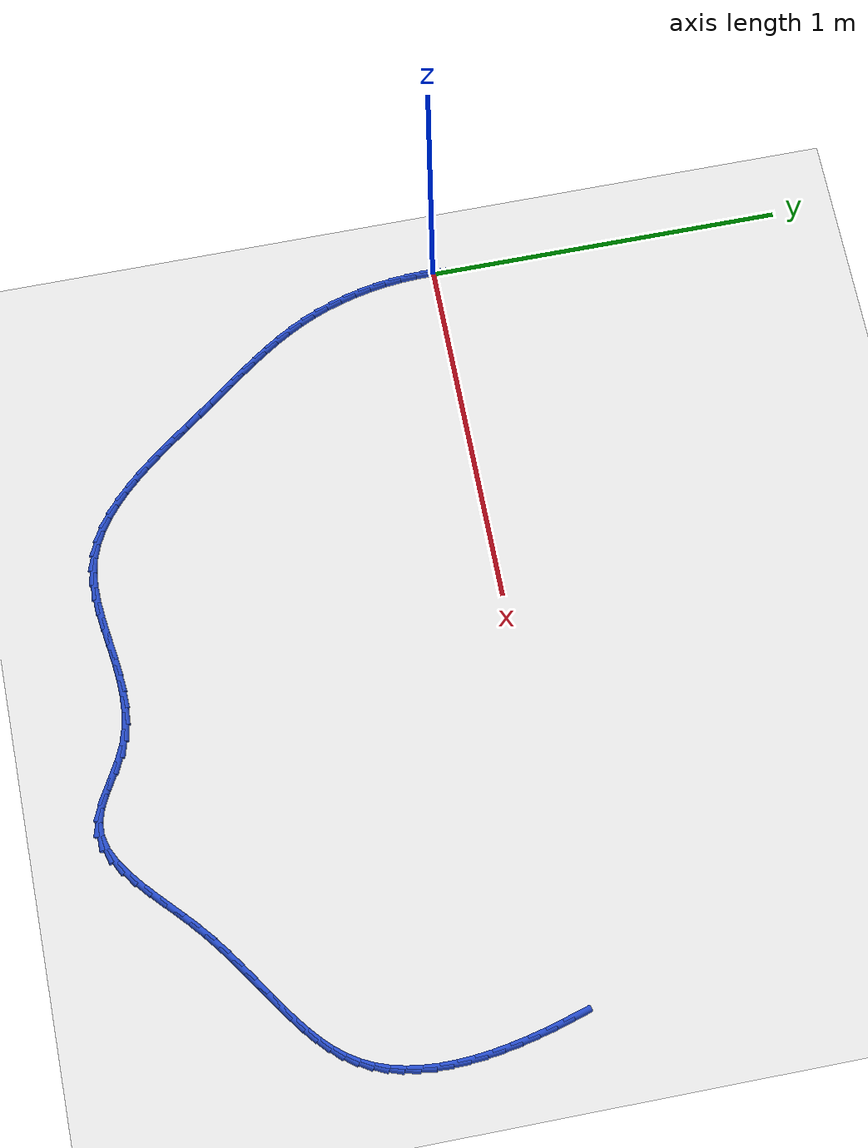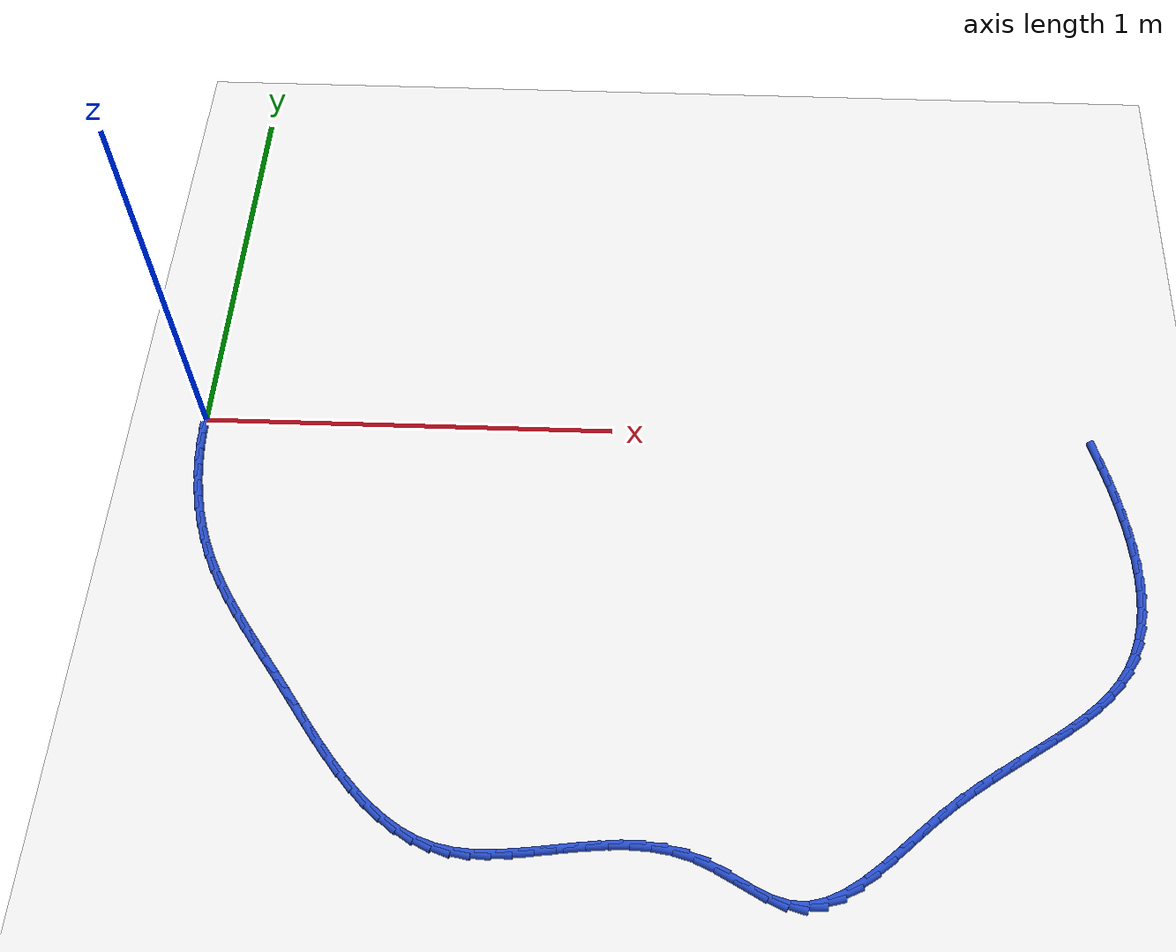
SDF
<sdf version="1.6">
 <world name="default">
  <model name="ground_plane">
   <static>1</static>
   <link name="link">
    <collision name="collision">
     <geometry><plane><normal>0 0 1</normal><size>100 100</size></plane></geometry>
     <surface><friction><ode><mu>100</mu><mu2>50</mu2></ode></friction></surface>
    </collision>
    <visual name="visual">
     <cast_shadows>0</cast_shadows>
     <geometry><plane><normal>0 0 1</normal><size>100 100</size></plane></geometry>
     <material>
      <script><uri>file://media/materials/scripts/gazebo.material</uri><name>Gazebo/WhiteGlow</name></script>
     </material>
    </visual>
   </link>
  </model>
  <model name="line">
   <link name="link_0">
    <pose>-3.469446951953614e-18 -4.163336342344337e-17 0.01 0 1.57 1.5196897494440293</pose>
    <collision name="collision">
     <geometry><cylinder><radius>0.01</radius><length>0.08</length></cylinder></geometry>
    </collision>
    <visual name="visual">
     <material>
      <script><name>Gazebo/Blue</name><uri>file://media/materials/scripts/gazebo.material</uri></script>
     </material>
     <geometry><cylinder><radius>0.01</radius><length>0.08</length></cylinder></geometry>
    </visual>
   </link>
   <link name="link_80">
    <pose>2.178298063990944 -0.037869752215366315 0.01 0 1.57 -1.284483496334908</pose>
    <collision name="collision">
     <geometry><cylinder><radius>0.01</radius><length>0.08</length></cylinder></geometry>
    </collision>
    <visual name="visual">
     <material>
      <script><name>Gazebo/Blue</name><uri>file://media/materials/scripts/gazebo.material</uri></script>
     </material>
     <geometry><cylinder><radius>0.01</radius><length>0.08</length></cylinder></geometry>
    </visual>
   </link>
   <link name="link_81">
    <pose>2.1927208156520206 -0.08685979939778331 0.01 0 1.57 -1.3126199745238356</pose>
    <collision name="collision">
     <geometry><cylinder><radius>0.01</radius><length>0.08</length></cylinder></geometry>
    </collision>
    <visual name="visual">
     <material>
      <script><name>Gazebo/Blue</name><uri>file://media/materials/scripts/gazebo.material</uri></script>
     </material>
     <geometry><cylinder><radius>0.01</radius><length>0.08</length></cylinder></geometry>
    </visual>
   </link>
   <link name="link_82">
    <pose>2.205645955420361 -0.13580572415979458 0.01 0 1.57 -1.3444061006746244</pose>
    <collision name="collision">
     <geometry><cylinder><radius>0.01</radius><length>0.08</length></cylinder></geometry>
    </collision>
    <visual name="visual">
     <material>
      <script><name>Gazebo/Blue</name><uri>file://media/materials/scripts/gazebo.material</uri></script>
     </material>
     <geometry><cylinder><radius>0.01</radius><length>0.08</length></cylinder></geometry>
    </visual>
   </link>
   <link name="link_83">
    <pose>2.2168640631365277 -0.18450834572381858 0.01 0 1.57 -1.3803912503758573</pose>
    <collision name="collision">
     <geometry><cylinder><radius>0.01</radius><length>0.08</length></cylinder></geometry>
    </collision>
    <visual name="visual">
     <material>
      <script><name>Gazebo/Blue</name><uri>file://media/materials/scripts/gazebo.material</uri></script>
     </material>
     <geometry><cylinder><radius>0.01</radius><length>0.08</length></cylinder></geometry>
    </visual>
   </link>
   <link name="link_84">
    <pose>2.2261657186410884 -0.23276848331227598 0.01 0 1.57 -1.421228438710399</pose>
    <collision name="collision">
     <geometry><cylinder><radius>0.01</radius><length>0.08</length></cylinder></geometry>
    </collision>
    <visual name="visual">
     <material>
      <script><name>Gazebo/Blue</name><uri>file://media/materials/scripts/gazebo.material</uri></script>
     </material>
     <geometry><cylinder><radius>0.01</radius><length>0.08</length></cylinder></geometry>
    </visual>
   </link>
   <link name="link_85">
    <pose>2.233341501774609 -0.2803869561475872 0.01 0 1.57 -1.4676845626315542</pose>
    <collision name="collision">
     <geometry><cylinder><radius>0.01</radius><length>0.08</length></cylinder></geometry>
    </collision>
    <visual name="visual">
     <material>
      <script><name>Gazebo/Blue</name><uri>file://media/materials/scripts/gazebo.material</uri></script>
     </material>
     <geometry><cylinder><radius>0.01</radius><length>0.08</length></cylinder></geometry>
    </visual>
   </link>
   <link name="link_86">
    <pose>2.2381819923776543 -0.327164583452172 0.01 0 1.57 -1.520643876559541</pose>
    <collision name="collision">
     <geometry><cylinder><radius>0.01</radius><length>0.08</length></cylinder></geometry>
    </collision>
    <visual name="visual">
     <material>
      <script><name>Gazebo/Blue</name><uri>file://media/materials/scripts/gazebo.material</uri></script>
     </material>
     <geometry><cylinder><radius>0.01</radius><length>0.08</length></cylinder></geometry>
    </visual>
   </link>
   <link name="link_87">
    <pose>2.240477770290789 -0.37290218444845125 0.01 0 1.57 1.5604962083751936</pose>
    <collision name="collision">
     <geometry><cylinder><radius>0.01</radius><length>0.08</length></cylinder></geometry>
    </collision>
    <visual name="visual">
     <material>
      <script><name>Gazebo/Blue</name><uri>file://media/materials/scripts/gazebo.material</uri></script>
     </material>
     <geometry><cylinder><radius>0.01</radius><length>0.08</length></cylinder></geometry>
    </visual>
   </link>
   <link name="link_88">
    <pose>2.24001941535458 -0.4174005783588434 0.01 0 1.57 1.4914946252041597</pose>
    <collision name="collision">
     <geometry><cylinder><radius>0.01</radius><length>0.08</length></cylinder></geometry>
    </collision>
    <visual name="visual">
     <material>
      <script><name>Gazebo/Blue</name><uri>file://media/materials/scripts/gazebo.material</uri></script>
     </material>
     <geometry><cylinder><radius>0.01</radius><length>0.08</length></cylinder></geometry>
    </visual>
   </link>
   <link name="link_89">
    <pose>2.2365975074095923 -0.4604605844057695 0.01 0 1.57 1.4129110904837463</pose>
    <collision name="collision">
     <geometry><cylinder><radius>0.01</radius><length>0.08</length></cylinder></geometry>
    </collision>
    <visual name="visual">
     <material>
      <script><name>Gazebo/Blue</name><uri>file://media/materials/scripts/gazebo.material</uri></script>
     </material>
     <geometry><cylinder><radius>0.01</radius><length>0.08</length></cylinder></geometry>
    </visual>
   </link>
   <link name="link_90">
    <pose>2.230002626296391 -0.5018830218116495 0.01 0 1.57 1.3238962679488644</pose>
    <collision name="collision">
     <geometry><cylinder><radius>0.01</radius><length>0.08</length></cylinder></geometry>
    </collision>
    <visual name="visual">
     <material>
      <script><name>Gazebo/Blue</name><uri>file://media/materials/scripts/gazebo.material</uri></script>
     </material>
     <geometry><cylinder><radius>0.01</radius><length>0.08</length></cylinder></geometry>
    </visual>
   </link>
   <link name="link_91">
    <pose>2.2200253518555426 -0.5414687097989033 0.01 0 1.57 1.2240347713051292</pose>
    <collision name="collision">
     <geometry><cylinder><radius>0.01</radius><length>0.08</length></cylinder></geometry>
    </collision>
    <visual name="visual">
     <material>
      <script><name>Gazebo/Blue</name><uri>file://media/materials/scripts/gazebo.material</uri></script>
     </material>
     <geometry><cylinder><radius>0.01</radius><length>0.08</length></cylinder></geometry>
    </visual>
   </link>
   <link name="link_92">
    <pose>2.2064562639276124 -0.5790184675899519 0.01 0 1.57 1.1136714227686677</pose>
    <collision name="collision">
     <geometry><cylinder><radius>0.01</radius><length>0.08</length></cylinder></geometry>
    </collision>
    <visual name="visual">
     <material>
      <script><name>Gazebo/Blue</name><uri>file://media/materials/scripts/gazebo.material</uri></script>
     </material>
     <geometry><cylinder><radius>0.01</radius><length>0.08</length></cylinder></geometry>
    </visual>
   </link>
   <link name="link_93">
    <pose>2.189085942353165 -0.6143331144072135 0.01 0 1.57 0.9951902024704306</pose>
    <collision name="collision">
     <geometry><cylinder><radius>0.01</radius><length>0.08</length></cylinder></geometry>
    </collision>
    <visual name="visual">
     <material>
      <script><name>Gazebo/Blue</name><uri>file://media/materials/scripts/gazebo.material</uri></script>
     </material>
     <geometry><cylinder><radius>0.01</radius><length>0.08</length></cylinder></geometry>
    </visual>
   </link>
   <link name="link_94">
    <pose>2.167732040535717 -0.6472406312640031 0.01 0 1.57 0.8837471085602193</pose>
    <collision name="collision">
     <geometry><cylinder><radius>0.01</radius><length>0.08</length></cylinder></geometry>
    </collision>
    <visual name="visual">
     <material>
      <script><name>Gazebo/Blue</name><uri>file://media/materials/scripts/gazebo.material</uri></script>
     </material>
     <geometry><cylinder><radius>0.01</radius><length>0.08</length></cylinder></geometry>
    </visual>
   </link>
   <link name="link_95">
    <pose>2.1425626221897347 -0.677920551409687 0.01 0 1.57 0.7906947686664957</pose>
    <collision name="collision">
     <geometry><cylinder><radius>0.01</radius><length>0.08</length></cylinder></geometry>
    </collision>
    <visual name="visual">
     <material>
      <script><name>Gazebo/Blue</name><uri>file://media/materials/scripts/gazebo.material</uri></script>
     </material>
     <geometry><cylinder><radius>0.01</radius><length>0.08</length></cylinder></geometry>
    </visual>
   </link>
   <link name="link_96">
    <pose>2.113990005424907 -0.7067974584706427 0.01 0 1.57 0.7168480509368658</pose>
    <collision name="collision">
     <geometry><cylinder><radius>0.01</radius><length>0.08</length></cylinder></geometry>
    </collision>
    <visual name="visual">
     <material>
      <script><name>Gazebo/Blue</name><uri>file://media/materials/scripts/gazebo.material</uri></script>
     </material>
     <geometry><cylinder><radius>0.01</radius><length>0.08</length></cylinder></geometry>
    </visual>
   </link>
   <link name="link_97">
    <pose>2.082431480064455 -0.7343009239887102 0.01 0 1.57 0.6613399892860243</pose>
    <collision name="collision">
     <geometry><cylinder><radius>0.01</radius><length>0.08</length></cylinder></geometry>
    </collision>
    <visual name="visual">
     <material>
      <script><name>Gazebo/Blue</name><uri>file://media/materials/scripts/gazebo.material</uri></script>
     </material>
     <geometry><cylinder><radius>0.01</radius><length>0.08</length></cylinder></geometry>
    </visual>
   </link>
   <link name="link_98">
    <pose>2.048304335931602 -0.7608605195057324 0.01 0 1.57 0.6226564887567585</pose>
    <collision name="collision">
     <geometry><cylinder><radius>0.01</radius><length>0.08</length></cylinder></geometry>
    </collision>
    <visual name="visual">
     <material>
      <script><name>Gazebo/Blue</name><uri>file://media/materials/scripts/gazebo.material</uri></script>
     </material>
     <geometry><cylinder><radius>0.01</radius><length>0.08</length></cylinder></geometry>
    </visual>
   </link>
   <link name="link_99">
    <pose>2.0120258628495677 -0.7869058165635507 0.01 0 1.57 0.5991897772635979</pose>
    <collision name="collision">
     <geometry><cylinder><radius>0.01</radius><length>0.08</length></cylinder></geometry>
    </collision>
    <visual name="visual">
     <material>
      <script><name>Gazebo/Blue</name><uri>file://media/materials/scripts/gazebo.material</uri></script>
     </material>
     <geometry><cylinder><radius>0.01</radius><length>0.08</length></cylinder></geometry>
    </visual>
   </link>
   <link name="link_100">
    <pose>1.9740133506415742 -0.8128663867040072 0.01 0 1.57 0.5895132903647379</pose>
    <collision name="collision">
     <geometry><cylinder><radius>0.01</radius><length>0.08</length></cylinder></geometry>
    </collision>
    <visual name="visual">
     <material>
      <script><name>Gazebo/Blue</name><uri>file://media/materials/scripts/gazebo.material</uri></script>
     </material>
     <geometry><cylinder><radius>0.01</radius><length>0.08</length></cylinder></geometry>
    </visual>
   </link>
   <link name="link_101">
    <pose>1.9346840891308423 -0.8391718014689439 0.01 0 1.57 0.5924753760536323</pose>
    <collision name="collision">
     <geometry><cylinder><radius>0.01</radius><length>0.08</length></cylinder></geometry>
    </collision>
    <visual name="visual">
     <material>
      <script><name>Gazebo/Blue</name><uri>file://media/materials/scripts/gazebo.material</uri></script>
     </material>
     <geometry><cylinder><radius>0.01</radius><length>0.08</length></cylinder></geometry>
    </visual>
   </link>
   <link name="link_102">
    <pose>1.894455368140595 -0.8662516324002014 0.01 0 1.57 0.6071925737922212</pose>
    <collision name="collision">
     <geometry><cylinder><radius>0.01</radius><length>0.08</length></cylinder></geometry>
    </collision>
    <visual name="visual">
     <material>
      <script><name>Gazebo/Blue</name><uri>file://media/materials/scripts/gazebo.material</uri></script>
     </material>
     <geometry><cylinder><radius>0.01</radius><length>0.08</length></cylinder></geometry>
    </visual>
   </link>
   <link name="link_103">
    <pose>1.8537444774940524 -0.8945354510396222 0.01 0 1.57 0.6329903427815542</pose>
    <collision name="collision">
     <geometry><cylinder><radius>0.01</radius><length>0.08</length></cylinder></geometry>
    </collision>
    <visual name="visual">
     <material>
      <script><name>Gazebo/Blue</name><uri>file://media/materials/scripts/gazebo.material</uri></script>
     </material>
     <geometry><cylinder><radius>0.01</radius><length>0.08</length></cylinder></geometry>
    </visual>
   </link>
   <link name="link_104">
    <pose>1.8129687070144365 -0.924452828929048 0.01 0 1.57 0.669314668790153</pose>
    <collision name="collision">
     <geometry><cylinder><radius>0.01</radius><length>0.08</length></cylinder></geometry>
    </collision>
    <visual name="visual">
     <material>
      <script><name>Gazebo/Blue</name><uri>file://media/materials/scripts/gazebo.material</uri></script>
     </material>
     <geometry><cylinder><radius>0.01</radius><length>0.08</length></cylinder></geometry>
    </visual>
   </link>
   <link name="link_105">
    <pose>1.7725453465249683 -0.9564333376103205 0.01 0 1.57 0.7138515116222203</pose>
    <collision name="collision">
     <geometry><cylinder><radius>0.01</radius><length>0.08</length></cylinder></geometry>
    </collision>
    <visual name="visual">
     <material>
      <script><name>Gazebo/Blue</name><uri>file://media/materials/scripts/gazebo.material</uri></script>
     </material>
     <geometry><cylinder><radius>0.01</radius><length>0.08</length></cylinder></geometry>
    </visual>
   </link>
   <link name="link_106">
    <pose>1.732863412904027 -0.9908077296928383 0.01 0 1.57 0.7454017324281159</pose>
    <collision name="collision">
     <geometry><cylinder><radius>0.01</radius><length>0.08</length></cylinder></geometry>
    </collision>
    <visual name="visual">
     <material>
      <script><name>Gazebo/Blue</name><uri>file://media/materials/scripts/gazebo.material</uri></script>
     </material>
     <geometry><cylinder><radius>0.01</radius><length>0.08</length></cylinder></geometry>
    </visual>
   </link>
   <link name="link_107">
    <pose>1.6939691822567775 -1.0267088182893152 0.01 0 1.57 0.7513202212122714</pose>
    <collision name="collision">
     <geometry><cylinder><radius>0.01</radius><length>0.08</length></cylinder></geometry>
    </collision>
    <visual name="visual">
     <material>
      <script><name>Gazebo/Blue</name><uri>file://media/materials/scripts/gazebo.material</uri></script>
     </material>
     <geometry><cylinder><radius>0.01</radius><length>0.08</length></cylinder></geometry>
    </visual>
   </link>
   <link name="link_108">
    <pose>1.655680939031055 -1.062472545429206 0.01 0 1.57 0.7308657409473678</pose>
    <collision name="collision">
     <geometry><cylinder><radius>0.01</radius><length>0.08</length></cylinder></geometry>
    </collision>
    <visual name="visual">
     <material>
      <script><name>Gazebo/Blue</name><uri>file://media/materials/scripts/gazebo.material</uri></script>
     </material>
     <geometry><cylinder><radius>0.01</radius><length>0.08</length></cylinder></geometry>
    </visual>
   </link>
   <link name="link_109">
    <pose>1.6178128469569546 -1.0964204505061537 0.01 0 1.57 0.6803315169136105</pose>
    <collision name="collision">
     <geometry><cylinder><radius>0.01</radius><length>0.08</length></cylinder></geometry>
    </collision>
    <visual name="visual">
     <material>
      <script><name>Gazebo/Blue</name><uri>file://media/materials/scripts/gazebo.material</uri></script>
     </material>
     <geometry><cylinder><radius>0.01</radius><length>0.08</length></cylinder></geometry>
    </visual>
   </link>
   <link name="link_110">
    <pose>1.580179069764571 -1.1268740729137996 0.01 0 1.57 0.5921175073882483</pose>
    <collision name="collision">
     <geometry><cylinder><radius>0.01</radius><length>0.08</length></cylinder></geometry>
    </collision>
    <visual name="visual">
     <material>
      <script><name>Gazebo/Blue</name><uri>file://media/materials/scripts/gazebo.material</uri></script>
     </material>
     <geometry><cylinder><radius>0.01</radius><length>0.08</length></cylinder></geometry>
    </visual>
   </link>
   <link name="link_111">
    <pose>1.5425937711839997 -1.1521549520457857 0.01 0 1.57 0.454451534268472</pose>
    <collision name="collision">
     <geometry><cylinder><radius>0.01</radius><length>0.08</length></cylinder></geometry>
    </collision>
    <visual name="visual">
     <material>
      <script><name>Gazebo/Blue</name><uri>file://media/materials/scripts/gazebo.material</uri></script>
     </material>
     <geometry><cylinder><radius>0.01</radius><length>0.08</length></cylinder></geometry>
    </visual>
   </link>
   <link name="link_112">
    <pose>1.5048711149453369 -1.1705846272957534 0.01 0 1.57 0.2545672153094529</pose>
    <collision name="collision">
     <geometry><cylinder><radius>0.01</radius><length>0.08</length></cylinder></geometry>
    </collision>
    <visual name="visual">
     <material>
      <script><name>Gazebo/Blue</name><uri>file://media/materials/scripts/gazebo.material</uri></script>
     </material>
     <geometry><cylinder><radius>0.01</radius><length>0.08</length></cylinder></geometry>
    </visual>
   </link>
   <link name="link_113">
    <pose>1.4668252647786775 -1.180484638057345 0.01 0 1.57 -0.007991407863469071</pose>
    <collision name="collision">
     <geometry><cylinder><radius>0.01</radius><length>0.08</length></cylinder></geometry>
    </collision>
    <visual name="visual">
     <material>
      <script><name>Gazebo/Blue</name><uri>file://media/materials/scripts/gazebo.material</uri></script>
     </material>
     <geometry><cylinder><radius>0.01</radius><length>0.08</length></cylinder></geometry>
    </visual>
   </link>
   <link name="link_114">
    <pose>1.428270384414117 -1.1801765237242026 0.01 0 1.57 -0.27941802987849435</pose>
    <collision name="collision">
     <geometry><cylinder><radius>0.01</radius><length>0.08</length></cylinder></geometry>
    </collision>
    <visual name="visual">
     <material>
      <script><name>Gazebo/Blue</name><uri>file://media/materials/scripts/gazebo.material</uri></script>
     </material>
     <geometry><cylinder><radius>0.01</radius><length>0.08</length></cylinder></geometry>
    </visual>
   </link>
   <link name="link_115">
    <pose>1.3890297287896436 -1.1689174245343694 0.01 0 1.57 -0.4467032702082762</pose>
    <collision name="collision">
     <geometry><cylinder><radius>0.01</radius><length>0.08</length></cylinder></geometry>
    </collision>
    <visual name="visual">
     <material>
      <script><name>Gazebo/Blue</name><uri>file://media/materials/scripts/gazebo.material</uri></script>
     </material>
     <geometry><cylinder><radius>0.01</radius><length>0.08</length></cylinder></geometry>
    </visual>
   </link>
   <link name="link_116">
    <pose>1.3489631004019098 -1.1497256890438645 0.01 0 1.57 -0.5139659578299092</pose>
    <collision name="collision">
     <geometry><cylinder><radius>0.01</radius><length>0.08</length></cylinder></geometry>
    </collision>
    <visual name="visual">
     <material>
      <script><name>Gazebo/Blue</name><uri>file://media/materials/scripts/gazebo.material</uri></script>
     </material>
     <geometry><cylinder><radius>0.01</radius><length>0.08</length></cylinder></geometry>
    </visual>
   </link>
   <link name="link_117">
    <pose>1.3079394845483185 -1.1265646927220556 0.01 0 1.57 -0.5029433280937265</pose>
    <collision name="collision">
     <geometry><cylinder><radius>0.01</radius><length>0.08</length></cylinder></geometry>
    </collision>
    <visual name="visual">
     <material>
      <script><name>Gazebo/Blue</name><uri>file://media/materials/scripts/gazebo.material</uri></script>
     </material>
     <geometry><cylinder><radius>0.01</radius><length>0.08</length></cylinder></geometry>
    </visual>
   </link>
   <link name="link_118">
    <pose>1.265827866526313 -1.1033978110426932 0.01 0 1.57 -0.4173490156932518</pose>
    <collision name="collision">
     <geometry><cylinder><radius>0.01</radius><length>0.08</length></cylinder></geometry>
    </collision>
    <visual name="visual">
     <material>
      <script><name>Gazebo/Blue</name><uri>file://media/materials/scripts/gazebo.material</uri></script>
     </material>
     <geometry><cylinder><radius>0.01</radius><length>0.08</length></cylinder></geometry>
    </visual>
   </link>
   <link name="link_119">
    <pose>1.222497479862408 -1.0841852633415903 0.01 0 1.57 -0.2752970291557041</pose>
    <collision name="collision">
     <geometry><cylinder><radius>0.01</radius><length>0.08</length></cylinder></geometry>
    </collision>
    <visual name="visual">
     <material>
      <script><name>Gazebo/Blue</name><uri>file://media/materials/scripts/gazebo.material</uri></script>
     </material>
     <geometry><cylinder><radius>0.01</radius><length>0.08</length></cylinder></geometry>
    </visual>
   </link>
   <link name="link_120">
    <pose>1.1779193280056084 -1.0715933032195768 0.01 0 1.57 -0.1434183558952024</pose>
    <collision name="collision">
     <geometry><cylinder><radius>0.01</radius><length>0.08</length></cylinder></geometry>
    </collision>
    <visual name="visual">
     <material>
      <script><name>Gazebo/Blue</name><uri>file://media/materials/scripts/gazebo.material</uri></script>
     </material>
     <geometry><cylinder><radius>0.01</radius><length>0.08</length></cylinder></geometry>
    </visual>
   </link>
   <link name="link_121">
    <pose>1.1323223484610596 -1.0650086511662227 0.01 0 1.57 -0.036714606897936874</pose>
    <collision name="collision">
     <geometry><cylinder><radius>0.01</radius><length>0.08</length></cylinder></geometry>
    </collision>
    <visual name="visual">
     <material>
      <script><name>Gazebo/Blue</name><uri>file://media/materials/scripts/gazebo.material</uri></script>
     </material>
     <geometry><cylinder><radius>0.01</radius><length>0.08</length></cylinder></geometry>
    </visual>
   </link>
   <link name="link_122">
    <pose>1.0859757268527004 -1.0633062881970095 0.01 0 1.57 0.043854745759847776</pose>
    <collision name="collision">
     <geometry><cylinder><radius>0.01</radius><length>0.08</length></cylinder></geometry>
    </collision>
    <visual name="visual">
     <material>
      <script><name>Gazebo/Blue</name><uri>file://media/materials/scripts/gazebo.material</uri></script>
     </material>
     <geometry><cylinder><radius>0.01</radius><length>0.08</length></cylinder></geometry>
    </visual>
   </link>
   <link name="link_123">
    <pose>1.0391486488044666 -1.065361195327419 0.01 0 1.57 0.0993176175381885</pose>
    <collision name="collision">
     <geometry><cylinder><radius>0.01</radius><length>0.08</length></cylinder></geometry>
    </collision>
    <visual name="visual">
     <material>
      <script><name>Gazebo/Blue</name><uri>file://media/materials/scripts/gazebo.material</uri></script>
     </material>
     <geometry><cylinder><radius>0.01</radius><length>0.08</length></cylinder></geometry>
    </visual>
   </link>
   <link name="link_124">
    <pose>0.992110299940295 -1.0700483535729322 0.01 0 1.57 0.1310942479673083</pose>
    <collision name="collision">
     <geometry><cylinder><radius>0.01</radius><length>0.08</length></cylinder></geometry>
    </collision>
    <visual name="visual">
     <material>
      <script><name>Gazebo/Blue</name><uri>file://media/materials/scripts/gazebo.material</uri></script>
     </material>
     <geometry><cylinder><radius>0.01</radius><length>0.08</length></cylinder></geometry>
    </visual>
   </link>
   <link name="link_125">
    <pose>0.9451298658841224 -1.0762427439490312 0.01 0 1.57 0.14004471068561664</pose>
    <collision name="collision">
     <geometry><cylinder><radius>0.01</radius><length>0.08</length></cylinder></geometry>
    </collision>
    <visual name="visual">
     <material>
      <script><name>Gazebo/Blue</name><uri>file://media/materials/scripts/gazebo.material</uri></script>
     </material>
     <geometry><cylinder><radius>0.01</radius><length>0.08</length></cylinder></geometry>
    </visual>
   </link>
   <link name="link_126">
    <pose>0.8984765322598849 -1.0828193474711973 0.01 0 1.57 0.12599365189885828</pose>
    <collision name="collision">
     <geometry><cylinder><radius>0.01</radius><length>0.08</length></cylinder></geometry>
    </collision>
    <visual name="visual">
     <material>
      <script><name>Gazebo/Blue</name><uri>file://media/materials/scripts/gazebo.material</uri></script>
     </material>
     <geometry><cylinder><radius>0.01</radius><length>0.08</length></cylinder></geometry>
    </visual>
   </link>
   <link name="link_127">
    <pose>0.8524194846915212 -1.0886531451549115 0.01 0 1.57 0.08753485679270152</pose>
    <collision name="collision">
     <geometry><cylinder><radius>0.01</radius><length>0.08</length></cylinder></geometry>
    </collision>
    <visual name="visual">
     <material>
      <script><name>Gazebo/Blue</name><uri>file://media/materials/scripts/gazebo.material</uri></script>
     </material>
     <geometry><cylinder><radius>0.01</radius><length>0.08</length></cylinder></geometry>
    </visual>
   </link>
   <link name="link_128">
    <pose>0.8072279088029674 -1.0926191180156557 0.01 0 1.57 0.02208440522446293</pose>
    <collision name="collision">
     <geometry><cylinder><radius>0.01</radius><length>0.08</length></cylinder></geometry>
    </collision>
    <visual name="visual">
     <material>
      <script><name>Gazebo/Blue</name><uri>file://media/materials/scripts/gazebo.material</uri></script>
     </material>
     <geometry><cylinder><radius>0.01</radius><length>0.08</length></cylinder></geometry>
    </visual>
   </link>
   <link name="link_129">
    <pose>0.7631709902181595 -1.0935922470689114 0.01 0 1.57 -0.07359502469615914</pose>
    <collision name="collision">
     <geometry><cylinder><radius>0.01</radius><length>0.08</length></cylinder></geometry>
    </collision>
    <visual name="visual">
     <material>
      <script><name>Gazebo/Blue</name><uri>file://media/materials/scripts/gazebo.material</uri></script>
     </material>
     <geometry><cylinder><radius>0.01</radius><length>0.08</length></cylinder></geometry>
    </visual>
   </link>
   <link name="link_130">
    <pose>0.7205179145610354 -1.0904475133301603 0.01 0 1.57 -0.20159107349497069</pose>
    <collision name="collision">
     <geometry><cylinder><radius>0.01</radius><length>0.08</length></cylinder></geometry>
    </collision>
    <visual name="visual">
     <material>
      <script><name>Gazebo/Blue</name><uri>file://media/materials/scripts/gazebo.material</uri></script>
     </material>
     <geometry><cylinder><radius>0.01</radius><length>0.08</length></cylinder></geometry>
    </visual>
   </link>
   <link name="link_131">
    <pose>0.6795349673486399 -1.0820719503655765 0.01 0 1.57 -0.3445600456753707</pose>
    <collision name="collision">
     <geometry><cylinder><radius>0.01</radius><length>0.08</length></cylinder></geometry>
    </collision>
    <visual name="visual">
     <material>
      <script><name>Gazebo/Blue</name><uri>file://media/materials/scripts/gazebo.material</uri></script>
     </material>
     <geometry><cylinder><radius>0.01</radius><length>0.08</length></cylinder></geometry>
    </visual>
   </link>
   <link name="link_132">
    <pose>0.6403319476689956 -1.068002933501048 0.01 0 1.57 -0.4739007098946339</pose>
    <collision name="collision">
     <geometry><cylinder><radius>0.01</radius><length>0.08</length></cylinder></geometry>
    </collision>
    <visual name="visual">
     <material>
      <script><name>Gazebo/Blue</name><uri>file://media/materials/scripts/gazebo.material</uri></script>
     </material>
     <geometry><cylinder><radius>0.01</radius><length>0.08</length></cylinder></geometry>
    </visual>
   </link>
   <link name="link_133">
    <pose>0.6027856716604261 -1.0487460916192217 0.01 0 1.57 -0.5849048973870303</pose>
    <collision name="collision">
     <geometry><cylinder><radius>0.01</radius><length>0.08</length></cylinder></geometry>
    </collision>
    <visual name="visual">
     <material>
      <script><name>Gazebo/Blue</name><uri>file://media/materials/scripts/gazebo.material</uri></script>
     </material>
     <geometry><cylinder><radius>0.01</radius><length>0.08</length></cylinder></geometry>
    </visual>
   </link>
   <link name="link_134">
    <pose>0.5667539922614385 -1.0248858627417603 0.01 0 1.57 -0.6774057378205387</pose>
    <collision name="collision">
     <geometry><cylinder><radius>0.01</radius><length>0.08</length></cylinder></geometry>
    </collision>
    <visual name="visual">
     <material>
      <script><name>Gazebo/Blue</name><uri>file://media/materials/scripts/gazebo.material</uri></script>
     </material>
     <geometry><cylinder><radius>0.01</radius><length>0.08</length></cylinder></geometry>
    </visual>
   </link>
   <link name="link_135">
    <pose>0.5320947624105395 -0.9970066848903273 0.01 0 1.57 -0.752738278048573</pose>
    <collision name="collision">
     <geometry><cylinder><radius>0.01</radius><length>0.08</length></cylinder></geometry>
    </collision>
    <visual name="visual">
     <material>
      <script><name>Gazebo/Blue</name><uri>file://media/materials/scripts/gazebo.material</uri></script>
     </material>
     <geometry><cylinder><radius>0.01</radius><length>0.08</length></cylinder></geometry>
    </visual>
   </link>
   <link name="link_136">
    <pose>0.498665835046236 -0.9656929960865854 0.01 0 1.57 -0.8128028124876945</pose>
    <collision name="collision">
     <geometry><cylinder><radius>0.01</radius><length>0.08</length></cylinder></geometry>
    </collision>
    <visual name="visual">
     <material>
      <script><name>Gazebo/Blue</name><uri>file://media/materials/scripts/gazebo.material</uri></script>
     </material>
     <geometry><cylinder><radius>0.01</radius><length>0.08</length></cylinder></geometry>
    </visual>
   </link>
   <link name="link_137">
    <pose>0.4663250631070355 -0.9315292343521986 0.01 0 1.57 -0.8594929437518334</pose>
    <collision name="collision">
     <geometry><cylinder><radius>0.01</radius><length>0.08</length></cylinder></geometry>
    </collision>
    <visual name="visual">
     <material>
      <script><name>Gazebo/Blue</name><uri>file://media/materials/scripts/gazebo.material</uri></script>
     </material>
     <geometry><cylinder><radius>0.01</radius><length>0.08</length></cylinder></geometry>
    </visual>
   </link>
   <link name="link_138">
    <pose>0.4349302995314444 -0.8950998377088295 0.01 0 1.57 -0.8944187285888865</pose>
    <collision name="collision">
     <geometry><cylinder><radius>0.01</radius><length>0.08</length></cylinder></geometry>
    </collision>
    <visual name="visual">
     <material>
      <script><name>Gazebo/Blue</name><uri>file://media/materials/scripts/gazebo.material</uri></script>
     </material>
     <geometry><cylinder><radius>0.01</radius><length>0.08</length></cylinder></geometry>
    </visual>
   </link>
   <link name="link_139">
    <pose>0.4043393972579699 -0.8569892441781417 0.01 0 1.57 -0.9188017045967076</pose>
    <collision name="collision">
     <geometry><cylinder><radius>0.01</radius><length>0.08</length></cylinder></geometry>
    </collision>
    <visual name="visual">
     <material>
      <script><name>Gazebo/Blue</name><uri>file://media/materials/scripts/gazebo.material</uri></script>
     </material>
     <geometry><cylinder><radius>0.01</radius><length>0.08</length></cylinder></geometry>
    </visual>
   </link>
   <link name="link_140">
    <pose>0.37441020922511864 -0.817781891781798 0.01 0 1.57 -0.933448478319245</pose>
    <collision name="collision">
     <geometry><cylinder><radius>0.01</radius><length>0.08</length></cylinder></geometry>
    </collision>
    <visual name="visual">
     <material>
      <script><name>Gazebo/Blue</name><uri>file://media/materials/scripts/gazebo.material</uri></script>
     </material>
     <geometry><cylinder><radius>0.01</radius><length>0.08</length></cylinder></geometry>
    </visual>
   </link>
   <link name="link_141">
    <pose>0.3450005883713971 -0.7780622185414611 0.01 0 1.57 -0.9387477743310269</pose>
    <collision name="collision">
     <geometry><cylinder><radius>0.01</radius><length>0.08</length></cylinder></geometry>
    </collision>
    <visual name="visual">
     <material>
      <script><name>Gazebo/Blue</name><uri>file://media/materials/scripts/gazebo.material</uri></script>
     </material>
     <geometry><cylinder><radius>0.01</radius><length>0.08</length></cylinder></geometry>
    </visual>
   </link>
   <link name="link_142">
    <pose>0.3159683876353132 -0.7384146624787954 0.01 0 1.57 -0.9346844444167466</pose>
    <collision name="collision">
     <geometry><cylinder><radius>0.01</radius><length>0.08</length></cylinder></geometry>
    </collision>
    <visual name="visual">
     <material>
      <script><name>Gazebo/Blue</name><uri>file://media/materials/scripts/gazebo.material</uri></script>
     </material>
     <geometry><cylinder><radius>0.01</radius><length>0.08</length></cylinder></geometry>
    </visual>
   </link>
   <link name="link_143">
    <pose>0.28717196914688187 -0.699422480963091 0.01 0 1.57 -0.9258140961401926</pose>
    <collision name="collision">
     <geometry><cylinder><radius>0.01</radius><length>0.08</length></cylinder></geometry>
    </collision>
    <visual name="visual">
     <material>
      <script><name>Gazebo/Blue</name><uri>file://media/materials/scripts/gazebo.material</uri></script>
     </material>
     <geometry><cylinder><radius>0.01</radius><length>0.08</length></cylinder></geometry>
    </visual>
   </link>
   <link name="link_144">
    <pose>0.25857887932252016 -0.6614157678983535 0.01 0 1.57 -0.9232715571356396</pose>
    <collision name="collision">
     <geometry><cylinder><radius>0.01</radius><length>0.08</length></cylinder></geometry>
    </collision>
    <visual name="visual">
     <material>
      <script><name>Gazebo/Blue</name><uri>file://media/materials/scripts/gazebo.material</uri></script>
     </material>
     <geometry><cylinder><radius>0.01</radius><length>0.08</length></cylinder></geometry>
    </visual>
   </link>
   <link name="link_145">
    <pose>0.23040087878998844 -0.6241583624824113 0.01 0 1.57 -0.9289974545950695</pose>
    <collision name="collision">
     <geometry><cylinder><radius>0.01</radius><length>0.08</length></cylinder></geometry>
    </collision>
    <visual name="visual">
     <material>
      <script><name>Gazebo/Blue</name><uri>file://media/materials/scripts/gazebo.material</uri></script>
     </material>
     <geometry><cylinder><radius>0.01</radius><length>0.08</length></cylinder></geometry>
    </visual>
   </link>
   <link name="link_146">
    <pose>0.20288286665153668 -0.5873372663816803 0.01 0 1.57 -0.9433590019300293</pose>
    <collision name="collision">
     <geometry><cylinder><radius>0.01</radius><length>0.08</length></cylinder></geometry>
    </collision>
    <visual name="visual">
     <material>
      <script><name>Gazebo/Blue</name><uri>file://media/materials/scripts/gazebo.material</uri></script>
     </material>
     <geometry><cylinder><radius>0.01</radius><length>0.08</length></cylinder></geometry>
    </visual>
   </link>
   <link name="link_147">
    <pose>0.17626974200941584 -0.550639481262578 0.01 0 1.57 -0.9666116847902207</pose>
    <collision name="collision">
     <geometry><cylinder><radius>0.01</radius><length>0.08</length></cylinder></geometry>
    </collision>
    <visual name="visual">
     <material>
      <script><name>Gazebo/Blue</name><uri>file://media/materials/scripts/gazebo.material</uri></script>
     </material>
     <geometry><cylinder><radius>0.01</radius><length>0.08</length></cylinder></geometry>
    </visual>
   </link>
   <link name="link_148">
    <pose>0.15080640396587558 -0.5137520087915205 0.01 0 1.57 -0.9988511974079863</pose>
    <collision name="collision">
     <geometry><cylinder><radius>0.01</radius><length>0.08</length></cylinder></geometry>
    </collision>
    <visual name="visual">
     <material>
      <script><name>Gazebo/Blue</name><uri>file://media/materials/scripts/gazebo.material</uri></script>
     </material>
     <geometry><cylinder><radius>0.01</radius><length>0.08</length></cylinder></geometry>
    </visual>
   </link>
   <link name="link_149">
    <pose>0.1267377516231661 -0.4763618506349238 0.01 0 1.57 -1.0399469243814972</pose>
    <collision name="collision">
     <geometry><cylinder><radius>0.01</radius><length>0.08</length></cylinder></geometry>
    </collision>
    <visual name="visual">
     <material>
      <script><name>Gazebo/Blue</name><uri>file://media/materials/scripts/gazebo.material</uri></script>
     </material>
     <geometry><cylinder><radius>0.01</radius><length>0.08</length></cylinder></geometry>
    </visual>
   </link>
   <link name="link_150">
    <pose>0.10430868408353766 -0.43815600845920494 0.01 0 1.57 -1.0894650609250611</pose>
    <collision name="collision">
     <geometry><cylinder><radius>0.01</radius><length>0.08</length></cylinder></geometry>
    </collision>
    <visual name="visual">
     <material>
      <script><name>Gazebo/Blue</name><uri>file://media/materials/scripts/gazebo.material</uri></script>
     </material>
     <geometry><cylinder><radius>0.01</radius><length>0.08</length></cylinder></geometry>
    </visual>
   </link>
   <link name="link_151">
    <pose>0.08376410044924007 -0.3988214839307796 0.01 0 1.57 -1.146253128691813</pose>
    <collision name="collision">
     <geometry><cylinder><radius>0.01</radius><length>0.08</length></cylinder></geometry>
    </collision>
    <visual name="visual">
     <material>
      <script><name>Gazebo/Blue</name><uri>file://media/materials/scripts/gazebo.material</uri></script>
     </material>
     <geometry><cylinder><radius>0.01</radius><length>0.08</length></cylinder></geometry>
    </visual>
   </link>
   <link name="link_152">
    <pose>0.06534074175222858 -0.35806480709107114 0.01 0 1.57 -1.2043504689888849</pose>
    <collision name="collision">
     <geometry><cylinder><radius>0.01</radius><length>0.08</length></cylinder></geometry>
    </collision>
    <visual name="visual">
     <material>
      <script><name>Gazebo/Blue</name><uri>file://media/materials/scripts/gazebo.material</uri></script>
     </material>
     <geometry><cylinder><radius>0.01</radius><length>0.08</length></cylinder></geometry>
    </visual>
   </link>
   <link name="link_153">
    <pose>0.04915306437508402 -0.3158852267745308 0.01 0 1.57 -1.2600284503360182</pose>
    <collision name="collision">
     <geometry><cylinder><radius>0.01</radius><length>0.08</length></cylinder></geometry>
    </collision>
    <visual name="visual">
     <material>
      <script><name>Gazebo/Blue</name><uri>file://media/materials/scripts/gazebo.material</uri></script>
     </material>
     <geometry><cylinder><radius>0.01</radius><length>0.08</length></cylinder></geometry>
    </visual>
   </link>
   <link name="link_154">
    <pose>0.03522127927028546 -0.2725075917473236 0.01 0 1.57 -1.3137179069450764</pose>
    <collision name="collision">
     <geometry><cylinder><radius>0.01</radius><length>0.08</length></cylinder></geometry>
    </collision>
    <visual name="visual">
     <material>
      <script><name>Gazebo/Blue</name><uri>file://media/materials/scripts/gazebo.material</uri></script>
     </material>
     <geometry><cylinder><radius>0.01</radius><length>0.08</length></cylinder></geometry>
    </visual>
   </link>
   <link name="link_155">
    <pose>0.02356316668139075 -0.22816256928337686 0.01 0 1.57 -1.36594034210501</pose>
    <collision name="collision">
     <geometry><cylinder><radius>0.01</radius><length>0.08</length></cylinder></geometry>
    </collision>
    <visual name="visual">
     <material>
      <script><name>Gazebo/Blue</name><uri>file://media/materials/scripts/gazebo.material</uri></script>
     </material>
     <geometry><cylinder><radius>0.01</radius><length>0.08</length></cylinder></geometry>
    </visual>
   </link>
   <link name="link_156">
    <pose>0.014196506851957592 -0.18308082665661674 0.01 0 1.57 -1.4172059984594068</pose>
    <collision name="collision">
     <geometry><cylinder><radius>0.01</radius><length>0.08</length></cylinder></geometry>
    </collision>
    <visual name="visual">
     <material>
      <script><name>Gazebo/Blue</name><uri>file://media/materials/scripts/gazebo.material</uri></script>
     </material>
     <geometry><cylinder><radius>0.01</radius><length>0.08</length></cylinder></geometry>
    </visual>
   </link>
   <link name="link_157">
    <pose>0.007139080025544188 -0.13749303114097225 0.01 0 1.57 -1.4680179041382664</pose>
    <collision name="collision">
     <geometry><cylinder><radius>0.01</radius><length>0.08</length></cylinder></geometry>
    </collision>
    <visual name="visual">
     <material>
      <script><name>Gazebo/Blue</name><uri>file://media/materials/scripts/gazebo.material</uri></script>
     </material>
     <geometry><cylinder><radius>0.01</radius><length>0.08</length></cylinder></geometry>
    </visual>
   </link>
   <link name="link_158">
    <pose>0.0024086664457082137 -0.09162985001036981 0.01 0 1.57 -1.5188776762926397</pose>
    <collision name="collision">
     <geometry><cylinder><radius>0.01</radius><length>0.08</length></cylinder></geometry>
    </collision>
    <visual name="visual">
     <material>
      <script><name>Gazebo/Blue</name><uri>file://media/materials/scripts/gazebo.material</uri></script>
     </material>
     <geometry><cylinder><radius>0.01</radius><length>0.08</length></cylinder></geometry>
    </visual>
   </link>
   <link name="link_159">
    <pose>2.3046356007522598e-05 -0.0457219505387366 0.01 0 1.57 -1.5702922723137518</pose>
    <collision name="collision">
     <geometry><cylinder><radius>0.01</radius><length>0.08</length></cylinder></geometry>
    </collision>
    <visual name="visual">
     <material>
      <script><name>Gazebo/Blue</name><uri>file://media/materials/scripts/gazebo.material</uri></script>
     </material>
     <geometry><cylinder><radius>0.01</radius><length>0.08</length></cylinder></geometry>
    </visual>
   </link>
  </model>
 </world>
</sdf>
